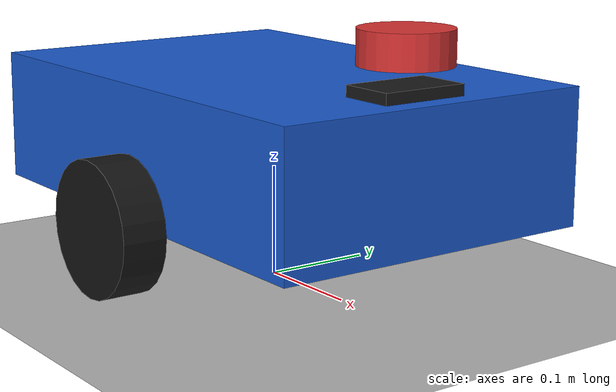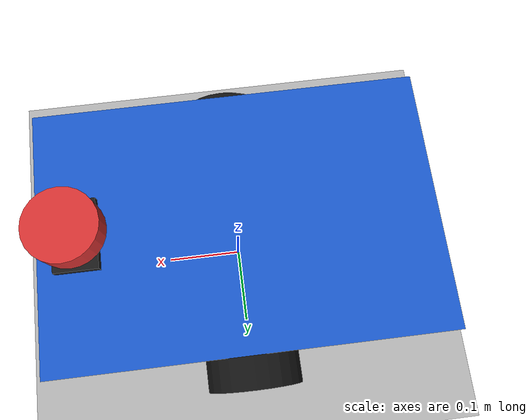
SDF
<?xml version="1.0"?>
<!-- Mundo Gazebo pequeño y autocontenido para el robot diferencial. -->
<sdf version="1.10">
  <world name="default">
    <gravity>0 0 -9.81</gravity>

    <!-- Sistemas básicos de Gazebo: física, comandos, escena y sensores. -->
    <plugin filename="gz-sim-physics-system"
            name="gz::sim::systems::Physics"/>
    <plugin filename="gz-sim-user-commands-system"
            name="gz::sim::systems::UserCommands"/>
    <plugin filename="gz-sim-scene-broadcaster-system"
            name="gz::sim::systems::SceneBroadcaster"/>
    <plugin filename="gz-sim-sensors-system"
            name="gz::sim::systems::Sensors">
      <render_engine>ogre2</render_engine>
    </plugin>
    <plugin filename="gz-sim-imu-system"
            name="gz::sim::systems::Imu"/>

    <light type="directional" name="sun">
      <cast_shadows>true</cast_shadows>
      <pose>0 0 10 0 0 0</pose>
      <diffuse>0.8 0.8 0.8 1</diffuse>
      <specular>0.2 0.2 0.2 1</specular>
      <direction>-0.5 0.1 -0.9</direction>
    </light>

    <model name="ground">
      <static>true</static>
      <link name="link">
        <collision name="collision">
          <geometry>
            <plane><normal>0 0 1</normal><size>20 20</size></plane>
          </geometry>
        </collision>
        <visual name="visual">
          <geometry>
            <plane><normal>0 0 1</normal><size>20 20</size></plane>
          </geometry>
          <material>
            <diffuse>0.70 0.70 0.70 1</diffuse>
          </material>
        </visual>
      </link>
    </model>

    <model name="simple_diff_robot">
      <!-- La base queda sobre las ruedas, que tocan el suelo. -->
      <pose>0 0 0.13 0 0 0</pose>
      <self_collide>false</self_collide>

      <link name="base_link">
        <inertial>
          <mass>2.0</mass>
          <inertia>
            <ixx>0.02</ixx><iyy>0.04</iyy><izz>0.05</izz>
            <ixy>0</ixy><ixz>0</ixz><iyz>0</iyz>
          </inertia>
        </inertial>
        <collision name="collision">
          <geometry><box><size>0.45 0.30 0.12</size></box></geometry>
        </collision>
        <visual name="visual">
          <geometry><box><size>0.45 0.30 0.12</size></box></geometry>
          <material><diffuse>0.10 0.35 0.80 1</diffuse></material>
        </visual>
      </link>

      <link name="left_wheel">
        <!-- El marco del link permanece alineado con el modelo para que el
             eje de la articulación 0 1 0 corresponda al eje transversal Y. -->
        <pose>0 0.17 -0.06 0 0 0</pose>
        <inertial>
          <mass>0.15</mass>
          <inertia>
            <ixx>0.0002</ixx><iyy>0.0001</iyy><izz>0.0002</izz>
            <ixy>0</ixy><ixz>0</ixz><iyz>0</iyz>
          </inertia>
        </inertial>
        <collision name="collision">
          <!-- Los cilindros de SDF apuntan sobre Z; se rota solo la geometría
               para que la rueda quede orientada sobre Y. -->
          <pose>0 0 0 1.5708 0 0</pose>
          <geometry><cylinder><radius>0.06</radius><length>0.04</length></cylinder></geometry>
        </collision>
        <visual name="visual">
          <pose>0 0 0 1.5708 0 0</pose>
          <geometry><cylinder><radius>0.06</radius><length>0.04</length></cylinder></geometry>
          <material><diffuse>0.08 0.08 0.08 1</diffuse></material>
        </visual>
      </link>

      <link name="right_wheel">
        <pose>0 -0.17 -0.06 0 0 0</pose>
        <inertial>
          <mass>0.15</mass>
          <inertia>
            <ixx>0.0002</ixx><iyy>0.0001</iyy><izz>0.0002</izz>
            <ixy>0</ixy><ixz>0</ixz><iyz>0</iyz>
          </inertia>
        </inertial>
        <collision name="collision">
          <pose>0 0 0 1.5708 0 0</pose>
          <geometry><cylinder><radius>0.06</radius><length>0.04</length></cylinder></geometry>
        </collision>
        <visual name="visual">
          <pose>0 0 0 1.5708 0 0</pose>
          <geometry><cylinder><radius>0.06</radius><length>0.04</length></cylinder></geometry>
          <material><diffuse>0.08 0.08 0.08 1</diffuse></material>
        </visual>
      </link>

      <joint name="left_wheel_joint" type="revolute">
        <parent>base_link</parent>
        <child>left_wheel</child>
        <axis>
          <xyz>0 1 0</xyz>
          <limit><lower>-1e16</lower><upper>1e16</upper></limit>
        </axis>
      </joint>
      <joint name="right_wheel_joint" type="revolute">
        <parent>base_link</parent>
        <child>right_wheel</child>
        <axis>
          <xyz>0 1 0</xyz>
          <limit><lower>-1e16</lower><upper>1e16</upper></limit>
        </axis>
      </joint>

      <!-- Rueda loca trasera. -->
      <link name="caster_link">
        <pose>-0.16 0 -0.10 0 0 0</pose>
        <inertial>
          <mass>0.05</mass>
          <inertia>
            <ixx>0.00002</ixx><iyy>0.00002</iyy><izz>0.00002</izz>
            <ixy>0</ixy><ixz>0</ixz><iyz>0</iyz>
          </inertia>
        </inertial>
        <collision name="collision">
          <geometry><sphere><radius>0.03</radius></sphere></geometry>
        </collision>
        <visual name="visual">
          <geometry><sphere><radius>0.03</radius></sphere></geometry>
          <material><diffuse>0.45 0.45 0.45 1</diffuse></material>
        </visual>
      </link>
      <joint name="caster_joint" type="fixed">
        <parent>base_link</parent>
        <child>caster_link</child>
      </joint>

      <!-- LiDAR frontal: publica en el tópico de Gazebo /scan. -->
      <link name="laser_link">
        <pose>0.18 0 0.10 0 0 0</pose>
        <sensor name="lidar" type="gpu_lidar">
          <always_on>1</always_on>
          <update_rate>10</update_rate>
          <topic>/scan</topic>
          <ray>
            <scan>
              <horizontal>
                <samples>360</samples>
                <resolution>1</resolution>
                <min_angle>-3.14159</min_angle>
                <max_angle>3.14159</max_angle>
              </horizontal>
            </scan>
            <range>
              <min>0.12</min>
              <max>8.0</max>
              <resolution>0.01</resolution>
            </range>
          </ray>
        </sensor>
        <visual name="visual">
          <geometry><cylinder><radius>0.04</radius><length>0.03</length></cylinder></geometry>
          <material><diffuse>0.85 0.20 0.20 1</diffuse></material>
        </visual>
      </link>
      <joint name="laser_joint" type="fixed">
        <parent>base_link</parent>
        <child>laser_link</child>
      </joint>

      <!-- IMU superior: publica aceleración y velocidad angular en /imu. -->
      <link name="imu_link">
        <pose>0 0 0.10 0 0 0</pose>
        <sensor name="imu" type="imu">
          <always_on>1</always_on>
          <update_rate>50</update_rate>
          <topic>/imu</topic>
        </sensor>
      </link>
      <joint name="imu_joint" type="fixed">
        <parent>base_link</parent>
        <child>imu_link</child>
      </joint>

      <!-- Cámara frontal: publica la imagen RGB en /camera/image. -->
      <link name="camera_link">
        <pose>0.18 0 0.05 0 0 0</pose>
        <sensor name="camera" type="camera">
          <always_on>1</always_on>
          <update_rate>10</update_rate>
          <topic>/camera/image</topic>
          <camera>
            <horizontal_fov>1.047</horizontal_fov>
            <image>
              <width>320</width>
              <height>240</height>
              <format>R8G8B8</format>
            </image>
            <clip><near>0.1</near><far>20.0</far></clip>
          </camera>
        </sensor>
        <visual name="visual">
          <geometry><box><size>0.05 0.08 0.04</size></box></geometry>
          <material><diffuse>0.10 0.10 0.10 1</diffuse></material>
        </visual>
      </link>
      <joint name="camera_joint" type="fixed">
        <parent>base_link</parent>
        <child>camera_link</child>
      </joint>

      <!-- El controlador convierte /cmd_vel en giro de ruedas y publica /odom. -->
      <plugin filename="gz-sim-diff-drive-system"
              name="gz::sim::systems::DiffDrive">
        <left_joint>left_wheel_joint</left_joint>
        <right_joint>right_wheel_joint</right_joint>
        <wheel_separation>0.34</wheel_separation>
        <wheel_radius>0.06</wheel_radius>
        <odom_publish_frequency>30</odom_publish_frequency>
        <topic>/cmd_vel</topic>
        <odom_topic>/odom</odom_topic>
        <frame_id>odom</frame_id>
        <child_frame_id>base_footprint</child_frame_id>
      </plugin>
    </model>
  </world>
</sdf>
